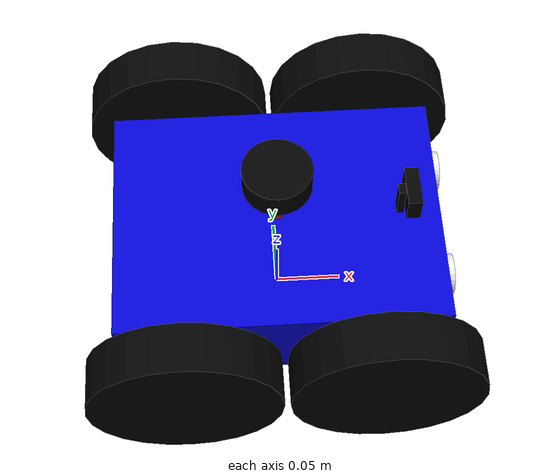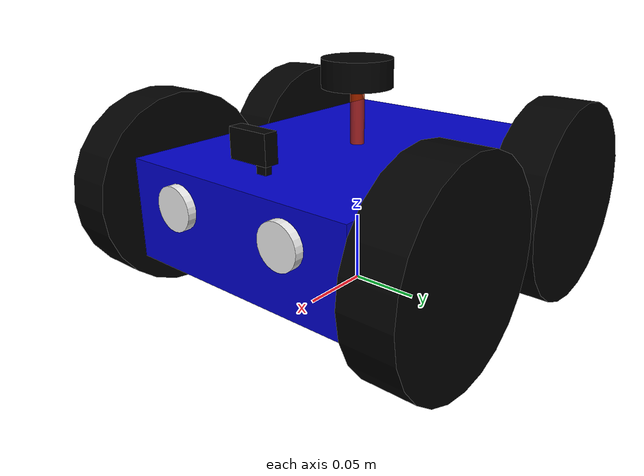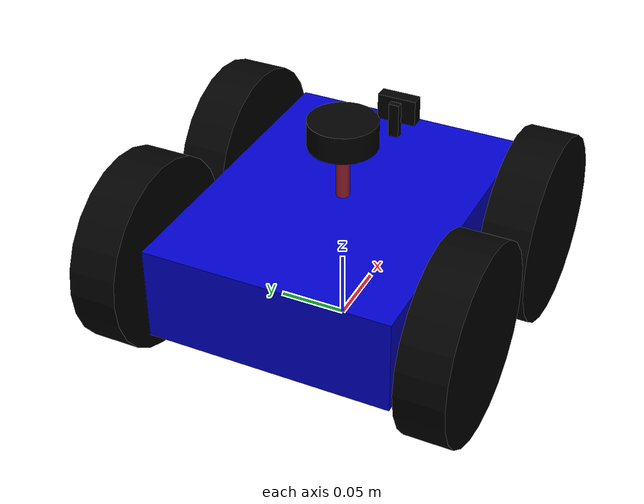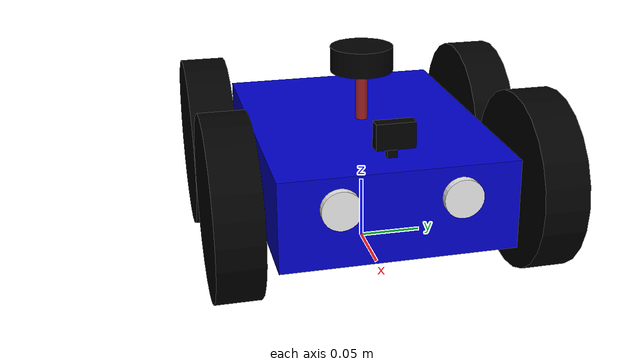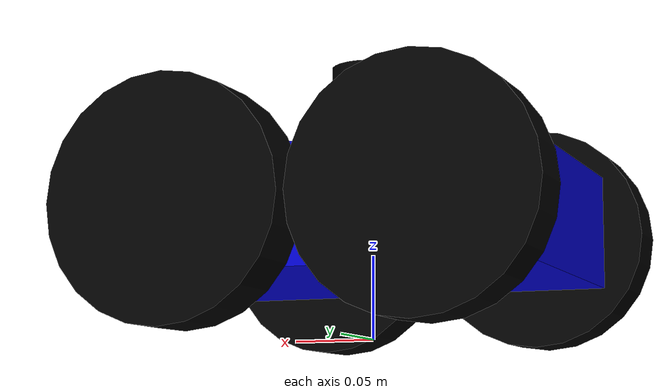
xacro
<?xml version="1.0"?>

<robot name="armbot" xmlns:xacro="http://wiki.ros.org/xacro">

  <xacro:include filename="gazebo_head.xacro"/>
  <xacro:include filename="gazebo_car.xacro"/>
  <xacro:include filename="gazebo_laser.xacro"/>
  <xacro:include filename="gazebo_camera.xacro"/>
  <xacro:include filename="gazebo_light.xacro"/>

  <gazebo>
    <plugin name="mobile_base_controller" filename="libgazebo_ros_planar_move.so">
      <commandTopic>/cmd_vel</commandTopic>
      <odometryTopic>/odom</odometryTopic>
      <odometryFrame>odom</odometryFrame>
      <robotBaseFrame>base_footprint</robotBaseFrame>
      <odometryRate>30.0</odometryRate>
      <!-- Stop the model if /cmd_vel disappears (move_base crash, teleop
           release, ...). Without this the planar-move plugin keeps applying
           the last twist forever. -->
      <cmdTimeout>0.5</cmdTimeout>
    </plugin>
  </gazebo>

</robot>

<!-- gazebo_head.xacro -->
<robot name="base" xmlns:xacro="http://wiki.ros.org/xacro">

    <xacro:macro name="sphere_inertial_matrix" params="m r">
        <inertial>
            <mass value="${m}" />
            <inertia ixx="${2*m*r*r/5}" ixy="0"
                ixz="0" iyy="${2*m*r*r/5}" iyz="0"
                izz="${2*m*r*r/5}" />
        </inertial>
    </xacro:macro>

    <xacro:macro name="cylinder_inertial_matrix" params="m r h">
        <inertial>
            <mass value="${m}" />
            <inertia ixx="${m*(3*r*r+h*h)/12}" ixy="0" ixz="0"
                iyy="${m*(3*r*r+h*h)/12}" iyz="0"
                izz="${m*r*r/2}" />
        </inertial>
    </xacro:macro>

    <xacro:macro name="Box_inertial_matrix" params="m l w h">
        <inertial>
            <mass value="${m}" />
            <inertia ixx="${m*(h*h + l*l)/12}" ixy="0" ixz="0"
                iyy="${m*(w*w + l*l)/12}" iyz="0"
                izz="${m*(w*w + h*h)/12}" />
        </inertial>
    </xacro:macro>

</robot>

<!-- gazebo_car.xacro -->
<robot name="armbot" xmlns:xacro="http://wiki.ros.org/xacro">
  <xacro:property name="PI" value="3.141592653589793"/>
  <xacro:property name="base_link_length" value="0.24"/>
  <xacro:property name="base_link_width" value="0.18"/>
  <xacro:property name="base_link_height" value="0.07"/>
  <xacro:property name="base_link_m" value="0.50"/>
  <xacro:property name="wheel_radius" value="${base_link_height}"/>
  <xacro:property name="wheel_length" value="${base_link_height / 2}"/>
  <xacro:property name="wheel_m" value="0.10"/>
  <xacro:property name="wheel_x" value="${base_link_length * 0.30}"/>
  <xacro:property name="wheel_y" value="${(base_link_width / 2 + wheel_length / 2) * 1.10}"/>

  <material name="armbot_blue">
    <color rgba="0 0 0.8 1"/>
  </material>
  <material name="armbot_black">
    <color rgba="0 0 0 1"/>
  </material>
  <material name="black">
    <color rgba="0 0 0 1"/>
  </material>

  <link name="base_footprint"/>

  <link name="base_link">
    <visual>
      <geometry>
        <box size="${base_link_length} ${base_link_width} ${base_link_height}"/>
      </geometry>
      <material name="armbot_blue"/>
    </visual>
    <collision>
      <geometry>
        <box size="${base_link_length} ${base_link_width} ${base_link_height}"/>
      </geometry>
    </collision>
    <xacro:Box_inertial_matrix m="${base_link_m}" l="${base_link_length}" w="${base_link_width}" h="${base_link_height}"/>
  </link>

  <joint name="base_link2base_footprint" type="fixed">
    <parent link="base_footprint"/>
    <child link="base_link"/>
    <origin xyz="0 0 ${wheel_radius}"/>
  </joint>

  <gazebo reference="base_link">
    <material>Gazebo/Blue</material>
  </gazebo>

  <xacro:macro name="armbot_wheel" params="name x_pos y_pos">
    <link name="${name}_wheel">
      <visual>
        <origin xyz="0 0 0" rpy="${PI / 2} 0 0"/>
        <geometry>
          <cylinder radius="${wheel_radius}" length="${wheel_length}"/>
        </geometry>
        <material name="armbot_black"/>
      </visual>
      <collision>
        <origin xyz="0 0 0" rpy="${PI / 2} 0 0"/>
        <geometry>
          <cylinder radius="${wheel_radius}" length="${wheel_length}"/>
        </geometry>
      </collision>
      <xacro:cylinder_inertial_matrix m="${wheel_m}" r="${wheel_radius}" h="${wheel_length}"/>
    </link>
    <joint name="${name}_wheel_joint" type="continuous">
      <parent link="base_link"/>
      <child link="${name}_wheel"/>
      <origin xyz="${x_pos} ${y_pos} 0" rpy="0 0 0"/>
      <axis xyz="0 1 0"/>
      <dynamics damping="0.0" friction="0.0"/>
    </joint>
    <gazebo reference="${name}_wheel">
      <material>Gazebo/DarkGrey</material>
      <mu1>0.0</mu1>
      <mu2>0.0</mu2>
      <kp>1000000.0</kp>
      <kd>1.0</kd>
    </gazebo>
  </xacro:macro>

  <xacro:armbot_wheel name="front_left" x_pos="${wheel_x}" y_pos="${wheel_y}"/>
  <xacro:armbot_wheel name="front_right" x_pos="${wheel_x}" y_pos="${-wheel_y}"/>
  <xacro:armbot_wheel name="back_left" x_pos="${-wheel_x}" y_pos="${wheel_y}"/>
  <xacro:armbot_wheel name="back_right" x_pos="${-wheel_x}" y_pos="${-wheel_y}"/>

</robot>

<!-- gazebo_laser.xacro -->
<robot name="my_laser" xmlns:xacro="http://wiki.ros.org/xacro">

    <xacro:property name="support_length" value="0.04" />
    <xacro:property name="support_radius" value="0.005" />

    <xacro:property name="support_x" value="0.0" />
    <xacro:property name="support_y" value="0.0" />
    <xacro:property name="support_z" value="${base_link_height / 2 + support_length / 2}" />

    <xacro:property name="support_m" value="0.02" />

    <link name="support">
        <visual>
            <geometry>
                <cylinder radius="${support_radius}" length="${support_length}" />
            </geometry>
            <origin xyz="0.0 0.0 0.0" rpy="0.0 0.0 0.0" />
            <material name="red">
                <color rgba="0.8 0.2 0.0 0.8" />
            </material>
        </visual>

        <collision>
            <geometry>
                <cylinder radius="${support_radius}" length="${support_length}" />
            </geometry>
            <origin xyz="0.0 0.0 0.0" rpy="0.0 0.0 0.0" />
        </collision>

        <xacro:cylinder_inertial_matrix m="${support_m}" r="${support_radius}" h="${support_length}" />

    </link>

    <joint name="support2base_link" type="fixed">
        <parent link="base_link" />
        <child link="support" />
        <origin xyz="${support_x} ${support_y} ${support_z}" />
    </joint>

    <gazebo reference="support">
        <material>Gazebo/White</material>
    </gazebo>

    <xacro:property name="laser_length" value="0.02" />
    <xacro:property name="laser_radius" value="0.025" />
    <xacro:property name="laser_x" value="0.0" />
    <xacro:property name="laser_y" value="0.0" />
    <xacro:property name="laser_z" value="${support_length / 2 + laser_length / 2}" />

    <xacro:property name="laser_m" value="0.1" />

    <link name="laser">
        <visual>
            <geometry>
                <cylinder radius="${laser_radius}" length="${laser_length}" />
            </geometry>
            <origin xyz="0.0 0.0 0.0" rpy="0.0 0.0 0.0" />
            <material name="black" />
        </visual>
        <collision>
            <geometry>
                <cylinder radius="${laser_radius}" length="${laser_length}" />
            </geometry>
            <origin xyz="0.0 0.0 0.0" rpy="0.0 0.0 0.0" />
        </collision>
        <xacro:cylinder_inertial_matrix m="${laser_m}" r="${laser_radius}" h="${laser_length}" />
    </link>

    <joint name="laser2support" type="fixed">
        <parent link="support" />
        <child link="laser" />
        <origin xyz="${laser_x} ${laser_y} ${laser_z}" />
    </joint>

    <gazebo reference="laser">
        <material>Gazebo/Black</material>

        <sensor type="ray" name="laser_sensor">
            <pose>0 0 0 0 0 0</pose>

            <visualize>false</visualize>

            <update_rate>40</update_rate>
            <ray>
                <scan>
                    <horizontal>
                        <samples>720</samples>
                        <resolution>1</resolution>
                        <min_angle>-2.35619</min_angle>
                        <max_angle>2.35619</max_angle>
                    </horizontal>
                </scan>
                <range>
                    <min>${laser_radius + 0.001}</min>
                    <max>12.0</max>
                    <resolution>0.01</resolution>
                </range>
                <noise>
                    <type>gaussian</type>
                    <mean>0.0</mean>
                    <stddev>0.01</stddev>
                </noise>
            </ray>

            <plugin name="gazebo_ros_laser_controller" filename="libgazebo_ros_laser.so">
                <topicName>/scan</topicName>
                <frameName>laser</frameName>
            </plugin>
        </sensor>
    </gazebo>

</robot>

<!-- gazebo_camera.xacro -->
<robot name="camera" xmlns:xacro="http://wiki.ros.org/xacro">

    <xacro:property name="mount_length" value="0.005"/>
    <xacro:property name="mount_width" value="0.008"/>
    <xacro:property name="mount_height" value="${support_length * 2 / 3}"/>

    <xacro:property name="mount_x" value="0.09"/>
    <xacro:property name="mount_y" value="0.0"/>
    <xacro:property name="mount_z" value="${base_link_height / 2 + support_length / 3}"/>

    <xacro:property name="mount_m" value="0.002"/>

    <link name="mount">
        <visual>
            <geometry>
                <box size="${mount_length} ${mount_width} ${mount_height}"/>
            </geometry>
            <origin xyz="0.0 0.0 0.0" rpy="0.0 0.0 0.0"/>
            <material name="black"/>
        </visual>

        <collision>
            <geometry>
                <box size="${mount_length} ${mount_width} ${mount_height}"/>
            </geometry>
            <origin xyz="0.0 0.0 0.0" rpy="0.0 0.0 0.0"/>
        </collision>

        <xacro:Box_inertial_matrix m="${mount_m}" l="${mount_length}" w="${mount_width}" h="${mount_height}"/>

    </link>

    <joint name="mount2base_link" type="fixed">
        <parent link="base_link"/>
        <child link="mount"/>
        <origin xyz="${mount_x} ${mount_y} ${mount_z}"/>
    </joint>

    <gazebo reference="mount">
        <material>Gazebo/FlatBlack</material>
    </gazebo>

    <xacro:property name="camera_length" value="0.01"/>
    <xacro:property name="camera_width" value="0.03"/>
    <xacro:property name="camera_height" value="0.02"/>

    <xacro:property name="camera_x" value="${mount_length / 2 + camera_length / 2}"/>

    <xacro:property name="camera_y" value="0.0"/>

    <xacro:property name="camera_z" value="${mount_height / 4}"/>

    <xacro:property name="camera_m" value="0.01"/>

    <link name="camera">
        <visual>
            <geometry>
                <box size="${camera_length} ${camera_width} ${camera_height}"/>
            </geometry>
            <origin xyz="0.0 0.0 0.0" rpy="0.0 0.0 0.0"/>
            <material name="black"/>
        </visual>
        <collision>
            <geometry>
                <box size="${camera_length} ${camera_width} ${camera_height}"/>
            </geometry>
            <origin xyz="0.0 0.0 0.0" rpy="0.0 0.0 0.0"/>
        </collision>

        <xacro:Box_inertial_matrix m="${camera_m}" l="${camera_length}" w="${camera_width}" h="${camera_height}"/>

    </link>

    <joint name="camera2mount" type="fixed">
        <parent link="mount"/>
        <child link="camera"/>
        <origin xyz="${camera_x} ${camera_y} ${camera_z}"/>
    </joint>

    <gazebo reference="camera">
        <material>Gazebo/Indigo</material>

        <sensor type="camera" name="camera_node">
            <update_rate>$(arg camera_image_rate)</update_rate>

            <camera name="head">
                <horizontal_fov>1.570796</horizontal_fov>

                <image>
                    <width>$(arg camera_image_width)</width>
                    <height>$(arg camera_image_height)</height>
                    <format>R8G8B8</format>
                </image>

                <clip>
                    <near>0.02</near>
                    <far>300</far>
                </clip>

                <noise>
                    <type>gaussian</type>
                    <mean>0.0</mean>
                    <stddev>0.007</stddev>
                </noise>
            </camera>

            <plugin name="gazebo_camera" filename="libgazebo_ros_camera.so">
                <alwaysOn>true</alwaysOn>
                <updateRate>0.0</updateRate>
                <cameraName>camera</cameraName>
                <imageTopicName>image_raw</imageTopicName>
                <cameraInfoTopicName>camera_info</cameraInfoTopicName>
                <frameName>camera</frameName>
                <hackBaseline>0.07</hackBaseline>
                <distortionK1>0.0</distortionK1>
                <distortionK2>0.0</distortionK2>
                <distortionK3>0.0</distortionK3>
                <distortionT1>0.0</distortionT1>
                <distortionT2>0.0</distortionT2>
            </plugin>
        </sensor>
    </gazebo>
</robot>

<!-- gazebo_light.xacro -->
<robot xmlns:xacro="http://wiki.ros.org/xacro">

  <xacro:property name="light_length" value="0.006" />
  <xacro:property name="light_radius" value="0.015" />

  <xacro:property name="light_m" value="0.02" />

  <xacro:macro name="car_light" params="name parent_link color:='White' type:='spot' *origin">
    <link name="${name}_link">
      <visual>
        <origin xyz="0 0 0" rpy="0 ${PI / 2} 0"/>
        <geometry>
          <cylinder radius="${light_radius}" length="${light_length}"/>
        </geometry>
      </visual>

      <collision>
        <origin xyz="0 0 0" rpy="0 ${PI / 2} 0"/>
        <geometry>
          <cylinder radius="${light_radius}" length="${light_length}"/>
        </geometry>
      </collision>

      <inertial>
        <mass value="${light_m}"/>
        <inertia ixx="1e-6" ixy="0" ixz="0" iyy="1e-6" iyz="0" izz="1e-6"/>
      </inertial>
    </link>

    <joint name="${name}_joint" type="fixed">
      <parent link="${parent_link}"/>
      <child link="${name}_link"/>
      <xacro:insert_block name="origin"/>
    </joint>

    <gazebo reference="${name}_link">
      <material>Gazebo/${color}Glow</material>

      <light name="${name}_light" type="${type}">
        <pose>0 0 0 0 0 0</pose>
        <diffuse>1 1 1 1</diffuse>
        <specular>0.5 0.5 0.5 1</specular>
        <intensity>0.1</intensity>
        <cast_shadows>true</cast_shadows>

        <xacro:if value="${type == 'spot'}">
          <direction>1 0 0</direction>
          <spot>
            <inner_angle>0.7</inner_angle>
            <outer_angle>1.5</outer_angle>
            <falloff>0.3</falloff>
          </spot>
        </xacro:if>

        <attenuation>
          <range>6.0</range>
          <linear>0.6</linear>
          <quadratic>0.1</quadratic>
        </attenuation>
      </light>
    </gazebo>
  </xacro:macro>

  <xacro:car_light name="left_headlight" parent_link="base_link">
    <origin xyz="${base_link_length / 2 + light_length / 2} ${base_link_width / 4} ${base_link_height / 6}" rpy="0 0 0"/>
  </xacro:car_light>

  <xacro:car_light name="right_headlight" parent_link="base_link">
    <origin xyz="${base_link_length / 2 + light_length / 2} ${base_link_width / -4} ${base_link_height / 6}" rpy="0 0 0"/>
  </xacro:car_light>

</robot>
